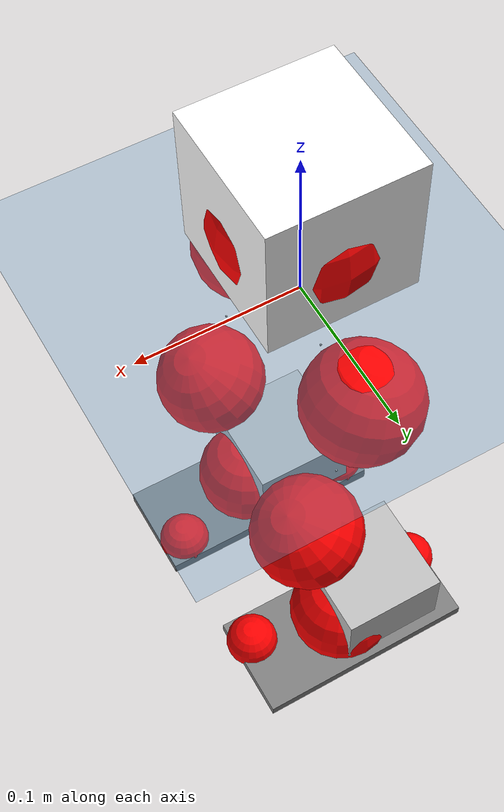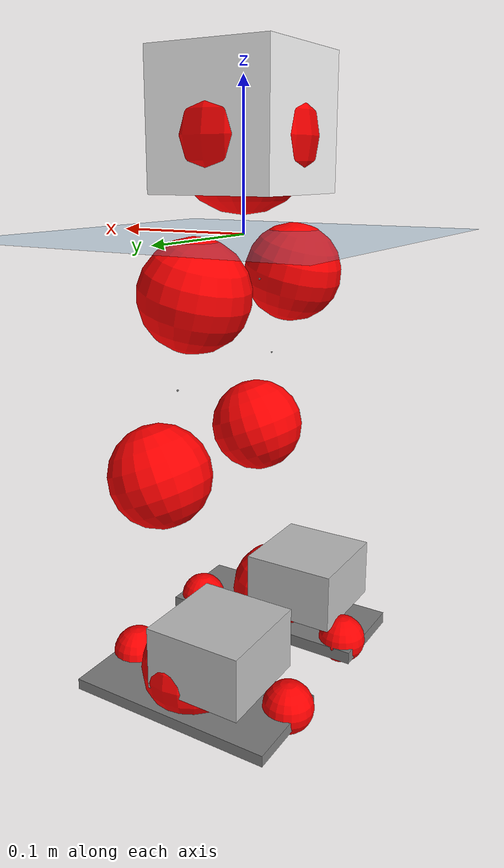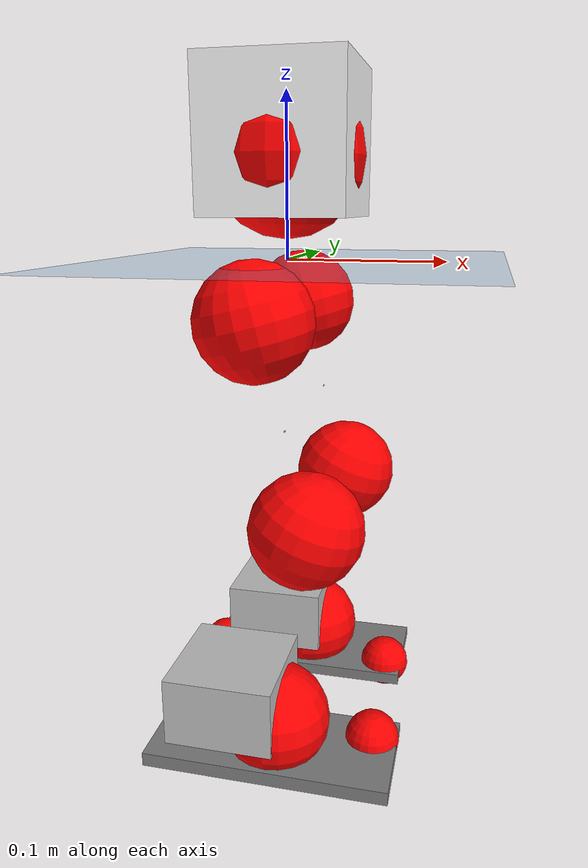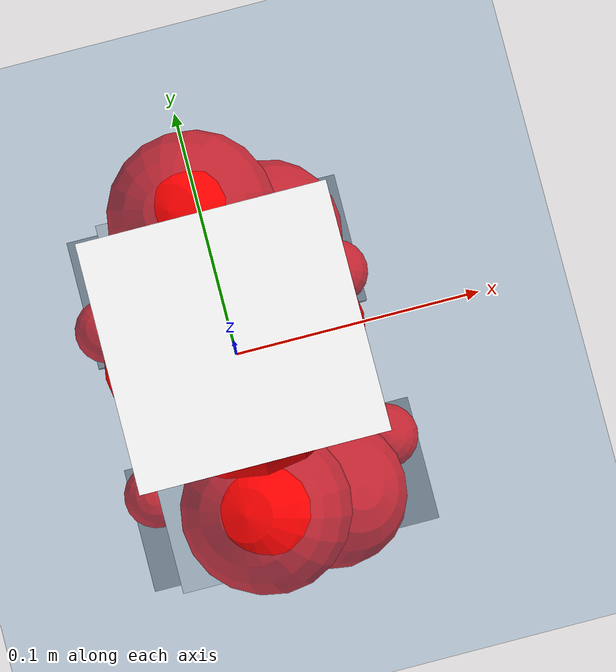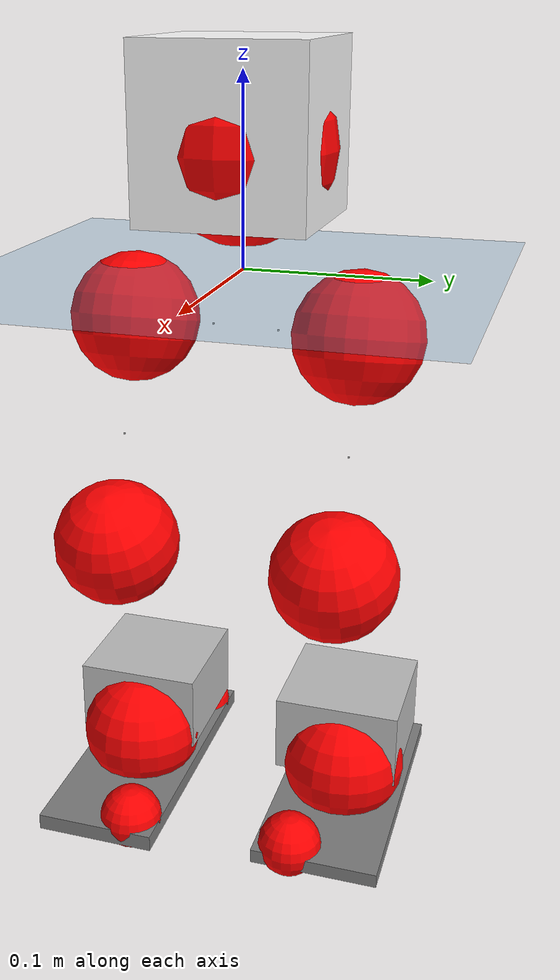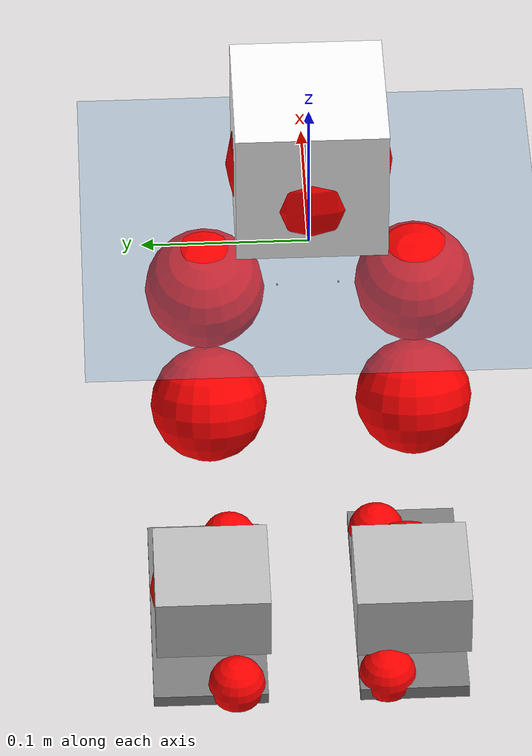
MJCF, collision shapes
<mujoco model="pi_12dof_release_v1">
  <compiler angle="radian" assetdir="assets" balanceinertia="true" inertiafromgeom="false"/>

  <option timestep="0.005" density="1.2" viscosity="2e-05"/>

  <size nkey="1"/>

  <visual>
    <quality shadowsize="8192"/>
    <map shadowclip="0.5"/>
  </visual>

  <default>
    <default class="/">
      <joint armature="0.01" damping="0.01" frictionloss="0.01"/>
      <geom contype="0" conaffinity="0" group="1" solref="-1000 -80"/>
      <site size="0.01 0.005 0.005" group="5"/>
      <general forcelimited="true" biastype="affine" gainprm="20" biasprm="0 -20 -0.5"/>
      <default class="foot">
        <geom size="0.0845 0.036 0.005" type="box" condim="6" group="4" priority="1" friction="0.9 0.2 0.2" solimp="0.015 1 0.005"/>
      </default>
      <default class="reward_collision_sphere">
        <geom group="5" rgba="1 0 0 1"/>
      </default>
    </default>
  </default>

  <asset>
    <texture type="skybox" colorspace="auto" name="//unnamed_texture_0" builtin="gradient" rgb1="0.95 0.95 0.95" rgb2="0.95 0.95 0.95" width="100" height="600"/>
    <texture type="2d" colorspace="auto" name="texplane" builtin="checker" rgb1="0.345 0.575 0.748" rgb2="0.345 0.575 0.748" markrgb="1 1 1" width="512" height="512"/>
    <material name="MatPlane" class="/" texture="texplane" texuniform="true" texrepeat="2 2" specular="0.9"/>
    <mesh name="baselink_1" class="/" file="baselink_1.STL"/>
    <mesh name="r_hip_pitch_link" class="/" file="r_hip_pitch_link.STL"/>
    <mesh name="r_hip_roll_link" class="/" file="r_hip_roll_link.STL"/>
    <mesh name="r_thigh_link" class="/" file="r_thigh_link.STL"/>
    <mesh name="r_calf_link" class="/" file="r_calf_link.STL"/>
    <mesh name="r_ankle_pitch_link" class="/" file="r_ankle_pitch_link.STL"/>
    <mesh name="r_ankle_roll_link" class="/" file="r_ankle_roll_link.STL"/>
    <mesh name="l_hip_pitch_link" class="/" file="l_hip_pitch_link.STL"/>
    <mesh name="l_hip_roll_link" class="/" file="l_hip_roll_link.STL"/>
    <mesh name="l_thigh_link" class="/" file="l_thigh_link.STL"/>
    <mesh name="l_calf_link" class="/" file="l_calf_link.STL"/>
    <mesh name="l_ankle_pitch_link" class="/" file="l_ankle_pitch_link.STL"/>
    <mesh name="l_ankle_roll_link" class="/" file="l_ankle_roll_link.STL"/>
  </asset>

  <worldbody>
    <geom name="floor" class="/" size="100 100 0.125" type="plane" group="0" material="MatPlane"/>
    <light name="toplight_shadow" class="/" pos="0 0 5" dir="0.0990148 0.0990148 -0.990148" type="directional" ambient="0.04 0.04 0.04" diffuse="0.55 0.55 0.55" specular="0.12 0.12 0.12"/>
    <light name="toplight_fill" class="/" pos="0 0 5" dir="0.0990148 0.0990148 -0.990148" type="directional" castshadow="false" ambient="0.04 0.04 0.04" diffuse="0.3 0.3 0.3" specular="0.08 0.08 0.08"/>
    <body name="trunk" pos="1.49723e-05 -2.13644e-05 -0.00181529" quat="1 -5.17798e-05 -4.50674e-05 -0.000129567">
      <inertial pos="-8.57567e-05 -0.00333203 0.0367988" quat="0.693699 0.00939902 0.011564 0.720111" mass="1.5501" diaginertia="0.00812549 0.00346345 0.00268078"/>
      <joint name="//unnamed_joint_0" type="free"/>
      <geom name="//unnamed_geom_1" class="/" type="mesh" density="0" rgba="1 1 1 1" mesh="baselink_1"/>
      <geom name="//unnamed_geom_2" class="/" size="0.0447883 0.0447883 0.0447883" pos="0 0 0.0727686" type="box" rgba="1 1 1 1"/>
      <geom name="//unnamed_geom_3" class="reward_collision_sphere" size="0.0492672" pos="0 0 0.0636725"/>
      <site name="imu" class="/" pos="-0.0133381 0.00311362 0.0130685" size="0.00895767"/>
      <camera name="track" class="/" pos="0 -1.64158 0" quat="0.707107 0.707107 0 0" mode="trackcom"/>
      <camera name="ego_camera" class="/" pos="0.0717678 0 0.163729" quat="-0.5 -0.5 0.5 0.5"/>
      <body name="r_hip_pitch_link" pos="-0.00252079 -0.0175843 -0.0296018" quat="0.992152 -0.000103899 -0.125039 -0.00039838">
        <inertial pos="0.00364442 -0.047009 -0.000242774" quat="-0.0220418 0.708228 -0.0320808 0.70491" mass="0.255251" diaginertia="8.35609e-05 3.62442e-05 5.08836e-05"/>
        <joint name="r_hip_pitch_joint" class="/" pos="0 0 0" axis="0.00953625 -0.999944 -0.00451471" stiffness="0.0109949" range="-1.75115 1.19555" armature="0.00892134" damping="0" frictionloss="0.00923191"/>
        <geom name="//unnamed_geom_4" class="/" type="mesh" density="0" rgba="0.75294 0.75294 0.75294 1" mesh="r_hip_pitch_link"/>
        <geom name="//unnamed_geom_5" class="/" size="0.000447883 0.000447883 0.000447883" type="box" rgba="0.75294 0.75294 0.75294 1"/>
        <body name="r_hip_roll_link" pos="-0.00132144 -0.0456439 0.000602205" quat="1 -2.16596e-05 -3.43084e-05 -1.81254e-05">
          <inertial pos="-0.000916975 -0.000196986 -0.0531925" quat="0.704994 -0.0834413 -0.0846398 0.699183" mass="0.284999" diaginertia="0.000260288 0.000103969 8.12572e-05"/>
          <joint name="r_hip_roll_joint" class="/" pos="0 0 0" axis="-0.999923 -0.00106288 -0.0123803" stiffness="0.00234073" range="-0.173501 0.486101" armature="0.00899709" damping="0.00959067" frictionloss="0.00987136"/>
          <geom name="//unnamed_geom_6" class="/" type="mesh" density="0" rgba="0.75294 0.75294 0.75294 1" mesh="r_hip_roll_link"/>
          <geom name="//unnamed_geom_7" class="/" size="0.000447883 0.000447883 0.000447883" type="box" rgba="0.75294 0.75294 0.75294 1"/>
          <geom name="//unnamed_geom_8" class="reward_collision_sphere" size="0.0358307"/>
          <body name="r_thigh_link" pos="0.00194105 -0.00168184 -0.0653972" quat="0.999999 -0.000798248 0.000448111 0.000652001">
            <inertial pos="0.00101115 0.00109866 -0.0421738" quat="0.736603 0.676306 0.00406995 0.0030468" mass="0.079617" diaginertia="9.92063e-05 3.50597e-05 3.6168e-05"/>
            <joint name="r_thigh_joint" class="/" pos="0 0 0" axis="-0.00554905 0.0090815 -0.999943" range="-0.312316 0.581419" armature="0.0086578" damping="0.000546865" frictionloss="0.00858472"/>
            <geom name="//unnamed_geom_9" class="/" type="mesh" density="0" rgba="0.75294 0.75294 0.75294 1" mesh="r_thigh_link"/>
            <geom name="//unnamed_geom_10" class="/" size="0.000447883 0.000447883 0.000447883" type="box" rgba="0.75294 0.75294 0.75294 1"/>
            <body name="r_calf_link" pos="-0.00212433 -0.00128293 -0.0622246" quat="0.947605 1.55732e-05 0.319443 0.000299479">
              <inertial pos="0.00220428 -0.00100184 -0.0632081" quat="0.999985 -0.00337827 -0.00047548 0.00430873" mass="0.602641" diaginertia="0.00287064 0.0013424 0.000110822"/>
              <joint name="r_calf_joint" class="/" pos="0 0 0" axis="0.00384589 -0.999991 -0.00164224" range="-1.6543 0.665529" armature="0.00824208" damping="0.0159363" frictionloss="0.0087537"/>
              <geom name="//unnamed_geom_11" class="/" type="mesh" density="0" rgba="0.75294 0.75294 0.75294 1" mesh="r_calf_link"/>
              <geom name="//unnamed_geom_12" class="/" size="0.000447883 0.000447883 0.000447883" type="box" rgba="0.75294 0.75294 0.75294 1"/>
              <geom name="//unnamed_geom_13" class="reward_collision_sphere" size="0.0358307"/>
              <body name="r_ankle_pitch_link" pos="0.000202536 0.00289936 -0.128177" quat="0.980075 1.58697e-05 -0.19863 -0.00013597">
                <inertial pos="0.00479219 0.00210817 -0.000264288" quat="0.00725872 0.71386 -0.00892407 0.700194" mass="0.118838" diaginertia="0.000239979 8.18183e-05 7.28053e-05"/>
                <joint name="r_ankle_pitch_joint" class="/" pos="0 0 0" axis="0.00455695 -0.99998 0.00429735" range="-1.27525 0.47944" armature="0.00939329" damping="0" frictionloss="0.00889618"/>
                <geom name="//unnamed_geom_14" class="/" type="mesh" density="0" rgba="0.75294 0.75294 0.75294 1" mesh="r_ankle_pitch_link"/>
                <geom name="//unnamed_geom_15" class="/" size="0.0349349 0.0358307 0.0223942" type="box" rgba="0.75294 0.75294 0.75294 1"/>
                <body name="r_ankle_roll_link" pos="0.0762788 0.000400087 0.000198145" quat="1 -7.12007e-05 1.03749e-05 -8.46978e-06">
                  <inertial pos="-0.0226903 -0.000260823 -0.010527" quat="0.556697 0.428693 0.437169 0.561421" mass="0.375322" diaginertia="0.000875061 0.000371944 0.000176927"/>
                  <joint name="r_ankle_roll_joint" class="/" pos="0 0 0" axis="-0.999998 -0.00186989 0.00102589" stiffness="0.00108093" range="-0.185602 0.147199" armature="0.00864529" damping="0" frictionloss="0.0101"/>
                  <geom name="//unnamed_geom_16" class="/" type="mesh" density="0" rgba="0.75294 0.75294 0.75294 1" mesh="r_ankle_roll_link"/>
                  <geom name="//unnamed_geom_17" class="/" type="mesh" rgba="0.75294 0.75294 0.75294 1" mesh="r_ankle_roll_link"/>
                  <geom name="right_foot" class="foot" size="0.079964 0.0340643 0.00460941" pos="-0.0488021 0 -0.0400227"/>
                  <geom name="//unnamed_geom_19" class="reward_collision_sphere" size="0.0358307" pos="-0.0478452 0 -0.0181921"/>
                  <geom name="//unnamed_geom_20" class="reward_collision_sphere" size="0.0179153" pos="0.0143536 0.0164158 -0.0363843"/>
                  <geom name="//unnamed_geom_21" class="reward_collision_sphere" size="0.0179153" pos="-0.114828 0.0164158 -0.0363843"/>
                  <site name="right_foot" class="foot" pos="-0.0488021 0 -0.0400227" size="0.00895767"/>
                </body>
              </body>
            </body>
          </body>
        </body>
      </body>
      <body name="l_hip_pitch_link" pos="-0.00254744 0.0189519 -0.0305329" quat="0.992186 -1.67038e-05 -0.124767 -0.000286493">
        <inertial pos="0.00118817 0.0466667 0.000400545" quat="-0.0412832 0.709603 0.0287676 0.702803" mass="0.278414" diaginertia="0.000100495 3.92008e-05 5.8756e-05"/>
        <joint name="l_hip_pitch_joint" class="/" pos="0 0 0" axis="0.000695597 0.999961 -0.00876937" range="-1.3004 1.72766" armature="0.010157" damping="0.00106041" frictionloss="0.00938534"/>
        <geom name="//unnamed_geom_22" class="/" type="mesh" density="0" rgba="0.75294 0.75294 0.75294 1" mesh="l_hip_pitch_link"/>
        <geom name="//unnamed_geom_23" class="/" size="0.000447883 0.000447883 0.000447883" type="box" rgba="0.75294 0.75294 0.75294 1"/>
        <body name="l_hip_roll_link" pos="-0.000840041 0.0436007 -0.000365585" quat="1 5.71573e-05 -3.86713e-05 0.00010773">
          <inertial pos="-0.00132648 0.00220597 -0.0545191" quat="0.699523 -0.0758794 -0.078102 0.706265" mass="0.279786" diaginertia="0.000267126 0.000101872 7.92056e-05"/>
          <joint name="l_hip_roll_joint" class="/" pos="0 0 0" axis="-0.999892 0.0110206 -0.00969539" range="-0.446772 0.144283" armature="0.00863523" damping="0.0048787" frictionloss="0.00778826"/>
          <geom name="//unnamed_geom_24" class="/" type="mesh" density="0" rgba="0.75294 0.75294 0.75294 1" mesh="l_hip_roll_link"/>
          <geom name="//unnamed_geom_25" class="/" size="0.000447883 0.000447883 0.000447883" type="box" rgba="0.75294 0.75294 0.75294 1"/>
          <geom name="//unnamed_geom_26" class="reward_collision_sphere" size="0.0358307"/>
          <body name="l_thigh_link" pos="-0.00117035 -0.000321997 -0.063724" quat="1 3.75408e-05 0.000150399 -5.61723e-05">
            <inertial pos="0.000471693 -0.00184751 -0.0439021" quat="0.668206 0.743929 -0.00830293 -0.000810147" mass="0.0805961" diaginertia="0.000100313 3.49437e-05 3.47355e-05"/>
            <joint name="l_thigh_joint" class="/" pos="0 0 0" axis="-0.000563864 -0.00270477 -0.999996" range="-0.6266 0.322282" armature="0.00920649" damping="0" frictionloss="0.00959406"/>
            <geom name="//unnamed_geom_27" class="/" type="mesh" density="0" rgba="0.75294 0.75294 0.75294 1" mesh="l_thigh_link"/>
            <geom name="//unnamed_geom_28" class="/" size="0.000447883 0.000447883 0.000447883" type="box" rgba="0.75294 0.75294 0.75294 1"/>
            <body name="l_calf_link" pos="0.00159056 -0.00208851 -0.0649985" quat="0.947976 -0.000476986 0.318341 -0.00039698">
              <inertial pos="-0.00236639 0.00224287 -0.0613677" quat="0.999968 -0.000278138 0.00176133 0.0077977" mass="0.580098" diaginertia="0.00279692 0.00129771 0.00010433"/>
              <joint name="l_calf_joint" class="/" pos="0 0 0" axis="0.00148842 0.999999 7.38461e-05" range="-0.659441 1.60164" armature="0.00781985" damping="0.00775086" frictionloss="0.00777999"/>
              <geom name="//unnamed_geom_29" class="/" type="mesh" density="0" rgba="0.75294 0.75294 0.75294 1" mesh="l_calf_link"/>
              <geom name="//unnamed_geom_30" class="/" size="0.000447883 0.000447883 0.000447883" type="box" rgba="0.75294 0.75294 0.75294 1"/>
              <geom name="//unnamed_geom_31" class="reward_collision_sphere" size="0.0358307"/>
              <body name="l_ankle_pitch_link" pos="0.000284271 0.00097016 -0.124877" quat="0.980083 -8.53465e-05 -0.198587 0.000125477">
                <inertial pos="0.00672194 0.000360413 -0.000724275" quat="-0.00179597 0.706923 0.00234925 0.707284" mass="0.118209" diaginertia="0.000231261 8.0493e-05 7.12146e-05"/>
                <joint name="l_ankle_pitch_joint" class="/" pos="0 0 0" axis="-0.00550436 0.999947 -0.00870081" range="-0.509361 1.29854" armature="0.00913557" damping="0" frictionloss="0.0100887"/>
                <geom name="//unnamed_geom_32" class="/" type="mesh" density="0" rgba="0.75294 0.75294 0.75294 1" mesh="l_ankle_pitch_link"/>
                <geom name="//unnamed_geom_33" class="/" size="0.0349349 0.0358307 0.0223942" type="box" rgba="0.75294 0.75294 0.75294 1"/>
                <body name="l_ankle_roll_link" pos="0.0691925 0.00258629 -0.000760064" quat="1 0.000135097 -0.000195966 -6.15336e-05">
                  <inertial pos="-0.0234411 -0.000548068 -0.0127026" quat="0.557707 0.431315 0.444533 0.552558" mass="0.371904" diaginertia="0.000899251 0.00039679 0.000178023"/>
                  <joint name="l_ankle_roll_joint" class="/" pos="0 0 0" axis="-1 -0.000730491 0.000430926" range="-0.151887 0.151507" armature="0.00932013" damping="0.00708804" frictionloss="0.00774694"/>
                  <geom name="//unnamed_geom_34" class="/" type="mesh" density="0" rgba="0.75294 0.75294 0.75294 1" mesh="l_ankle_roll_link"/>
                  <geom name="//unnamed_geom_35" class="/" type="mesh" rgba="0.75294 0.75294 0.75294 1" mesh="l_ankle_roll_link"/>
                  <geom name="left_foot" class="foot" size="0.0758713 0.0357657 0.00398714" pos="-0.0488021 0 -0.0400227"/>
                  <geom name="//unnamed_geom_37" class="reward_collision_sphere" size="0.0358307" pos="-0.0478452 0 -0.0181921"/>
                  <geom name="//unnamed_geom_38" class="reward_collision_sphere" size="0.0179153" pos="0.0143536 -0.0164158 -0.0363843"/>
                  <geom name="//unnamed_geom_39" class="reward_collision_sphere" size="0.0179153" pos="-0.114828 -0.0164158 -0.0363843"/>
                  <site name="left_foot" class="foot" pos="-0.0488021 0 -0.0400227" size="0.00895767"/>
                </body>
              </body>
            </body>
          </body>
        </body>
      </body>
    </body>
  </worldbody>

  <contact>
    <pair class="/" geom1="floor" geom2="right_foot" name="//unnamed_contact_1"/>
    <pair class="/" geom1="floor" geom2="left_foot" name="//unnamed_contact_0"/>
  </contact>

  <actuator>
    <general name="r_hip_pitch_joint" class="/" joint="r_hip_pitch_joint" forcerange="-18.4611 18.4611" gainprm="18.2005" biasprm="0 -18.2005 -0.478137"/>
    <general name="r_hip_roll_joint" class="/" joint="r_hip_roll_joint" forcerange="-17.092 17.092" gainprm="18.2005" biasprm="0 -18.2005 -0.478137"/>
    <general name="r_thigh_joint" class="/" joint="r_thigh_joint" forcerange="-20.3599 20.3599" gainprm="18.2005" biasprm="0 -18.2005 -0.478137"/>
    <general name="r_calf_joint" class="/" joint="r_calf_joint" forcerange="-18.4599 18.4599" gainprm="18.2005" biasprm="0 -18.2005 -0.478137"/>
    <general name="r_ankle_pitch_joint" class="/" joint="r_ankle_pitch_joint" forcerange="-17.0822 17.0822" gainprm="18.2005" biasprm="0 -18.2005 -0.478137"/>
    <general name="r_ankle_roll_joint" class="/" joint="r_ankle_roll_joint" forcerange="-18.7223 18.7223" gainprm="18.2005" biasprm="0 -18.2005 -0.478137"/>
    <general name="l_hip_pitch_joint" class="/" joint="l_hip_pitch_joint" forcerange="-19.2955 19.2955" gainprm="18.2005" biasprm="0 -18.2005 -0.478137"/>
    <general name="l_hip_roll_joint" class="/" joint="l_hip_roll_joint" forcerange="-18.136 18.136" gainprm="18.2005" biasprm="0 -18.2005 -0.478137"/>
    <general name="l_thigh_joint" class="/" joint="l_thigh_joint" forcerange="-19.5316 19.5316" gainprm="18.2005" biasprm="0 -18.2005 -0.478137"/>
    <general name="l_calf_joint" class="/" joint="l_calf_joint" forcerange="-17.8603 17.8603" gainprm="18.2005" biasprm="0 -18.2005 -0.478137"/>
    <general name="l_ankle_pitch_joint" class="/" joint="l_ankle_pitch_joint" forcerange="-18.912 18.912" gainprm="18.2005" biasprm="0 -18.2005 -0.478137"/>
    <general name="l_ankle_roll_joint" class="/" joint="l_ankle_roll_joint" forcerange="-16.9789 16.9789" gainprm="18.2005" biasprm="0 -18.2005 -0.478137"/>
  </actuator>

  <sensor>
    <gyro site="imu" name="imu_angular_velocity"/>
    <velocimeter site="imu" name="imu_linear_velocity"/>
    <framelinvel objtype="site" objname="left_foot" name="left_foot_global_linear_velocity"/>
    <framelinvel objtype="site" objname="right_foot" name="right_foot_global_linear_velocity"/>
  </sensor>

  <keyframe>
    <key name="home" qpos="0 0 0.291 1 0 0 0 0.4 0 0 -0.8 0.4 0 -0.4 0 0 0.8 -0.4 0"/>
  </keyframe>
</mujoco>
